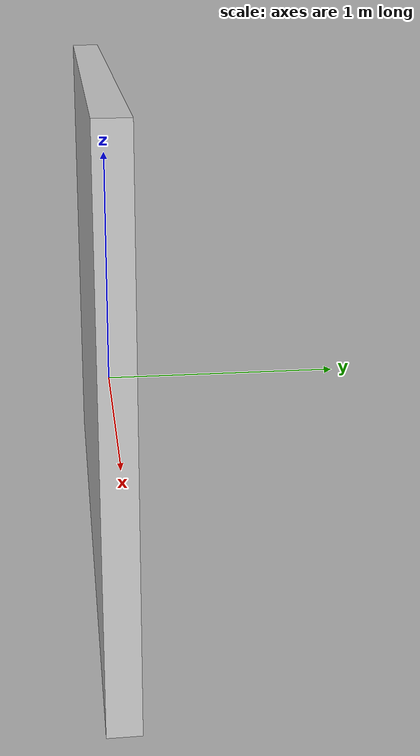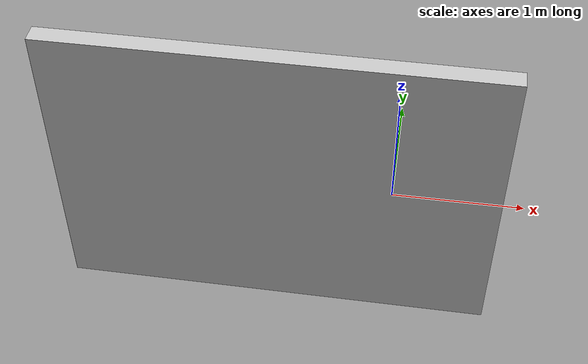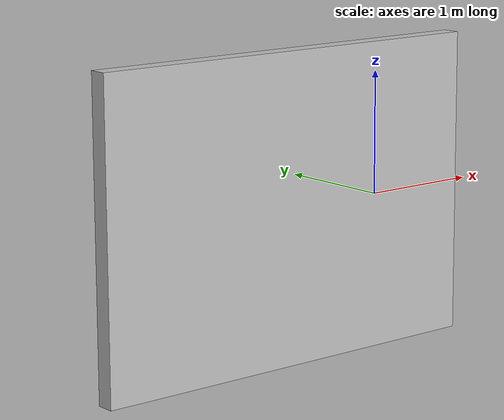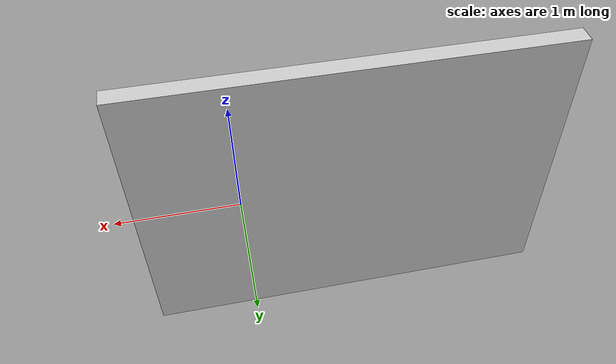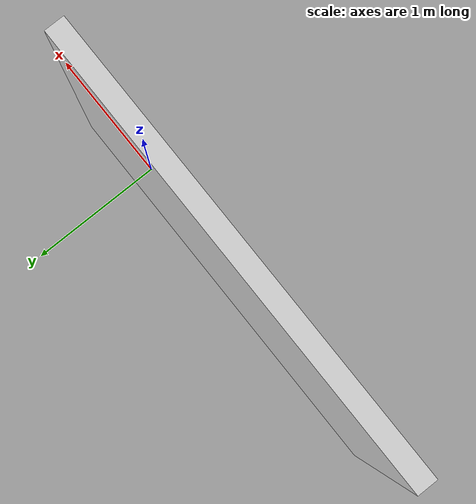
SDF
<?xml version="1.0" ?>
<sdf version="1.6">
  <model name="car">
    <static>true</static>
    <link name="link">
      <collision name="collision">
        <geometry>
          <mesh>
            <scale>0.5 0.5 0.5</scale>
            <uri>model://final_logo_wall/meshes/final_logo_wall.stl</uri>
          </mesh>
           <surface>
            <friction>
              <ode>
                <mu>1.2</mu>
                <mu2>1.2</mu2>
              </ode>
            </friction>
          </surface>
        </geometry>
      </collision>
      <visual name="visual">
        <geometry>
          <mesh>
            <scale>0.5 0.5 0.5</scale>
            <uri>model://final_logo_wall/meshes/final_logo_wall.dae</uri>
          </mesh>
        </geometry>
      </visual>
    </link>
  </model>
</sdf>
